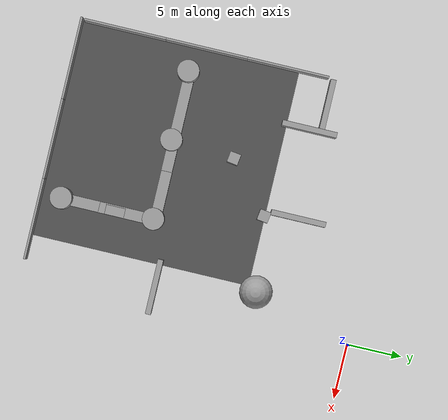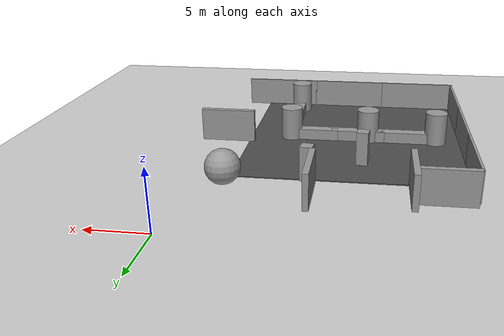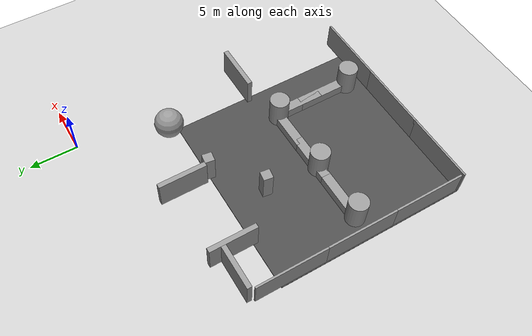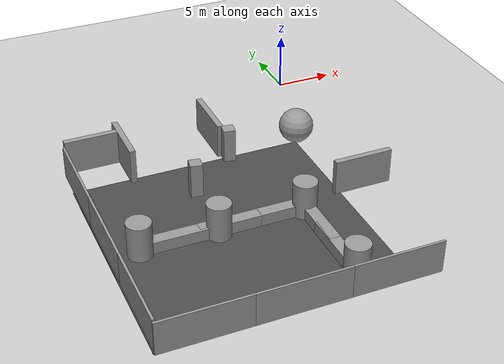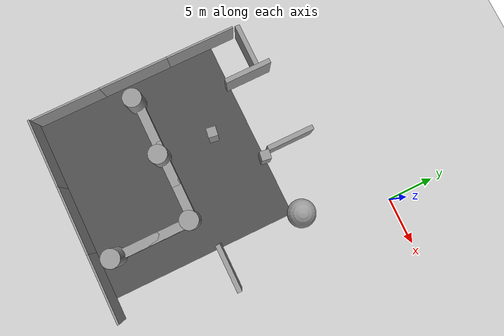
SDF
<sdf version="1.6">
 <world name="default">
  <model name="ground_plane">
   <static>1</static>
   <link name="link">
    <collision name="collision">
     <geometry><plane><normal>0 0 1</normal><size>100 100</size></plane></geometry>
     <surface>
      <contact><collide_bitmask>65535</collide_bitmask></contact>
      <friction><ode><mu>100</mu><mu2>50</mu2></ode></friction>
     </surface>
    </collision>
    <visual name="visual">
     <cast_shadows>0</cast_shadows>
     <geometry><plane><normal>0 0 1</normal><size>100 100</size></plane></geometry>
     <material>
      <script><uri>file://media/materials/scripts/gazebo.material</uri><name>Gazebo/Grey</name></script>
     </material>
    </visual>
   </link>
  </model>
  <model name="asphalt_plane_0_clone">
   <static>1</static>
   <link name="link">
    <collision name="collision"><geometry><box><size>20 20 0.1</size></box></geometry></collision>
    <visual name="visual">
     <cast_shadows>0</cast_shadows>
     <geometry><box><size>20 20 0.1</size></box></geometry>
     <material>
      <script>
       <uri>model://asphalt_plane/materials/scripts</uri>
       <uri>model://asphalt_plane/materials/textures</uri>
       <name>vrc/asphalt</name>
      </script>
     </material>
    </visual>
   </link>
   <pose>-13.0909 -19.8496 0 0 -0 0</pose>
  </model>
  <model name="grey_wall_clone_clone_3_clone_6_clone_3">
   <static>1</static>
   <link name="link">
    <pose>0 0 1.4 0 -0 0</pose>
    <collision name="collision"><geometry><box><size>7.5 0.2 2.8</size></box></geometry></collision>
    <visual name="visual">
     <cast_shadows>0</cast_shadows>
     <geometry><box><size>7.5 0.2 2.8</size></box></geometry>
     <material>
      <script>
       <uri>model://grey_wall/materials/scripts</uri>
       <uri>model://grey_wall/materials/textures</uri>
       <name>vrc/grey_wall</name>
      </script>
     </material>
    </visual>
    <enable_wind>1</enable_wind>
   </link>
   <pose>-22.9 -10.9196 0 0 -0 1.5707</pose>
   <enable_wind>1</enable_wind>
  </model>
  <model name="grey_wall_clone_clone_3_clone_6_clone_4">
   <static>1</static>
   <link name="link">
    <pose>0 0 1.4 0 -0 0</pose>
    <collision name="collision"><geometry><box><size>7.5 0.2 2.8</size></box></geometry></collision>
    <visual name="visual">
     <cast_shadows>0</cast_shadows>
     <geometry><box><size>7.5 0.2 2.8</size></box></geometry>
     <material>
      <script>
       <uri>model://grey_wall/materials/scripts</uri>
       <uri>model://grey_wall/materials/textures</uri>
       <name>vrc/grey_wall</name>
      </script>
     </material>
    </visual>
    <enable_wind>1</enable_wind>
   </link>
   <pose>-22.9 -18.392 0 0 -0 1.5707</pose>
   <enable_wind>1</enable_wind>
  </model>
  <model name="grey_wall_clone_clone_3_clone_6_clone_5">
   <static>1</static>
   <link name="link">
    <pose>0 0 1.4 0 -0 0</pose>
    <collision name="collision"><geometry><box><size>7.5 0.2 2.8</size></box></geometry></collision>
    <visual name="visual">
     <cast_shadows>0</cast_shadows>
     <geometry><box><size>7.5 0.2 2.8</size></box></geometry>
     <material>
      <script>
       <uri>model://grey_wall/materials/scripts</uri>
       <uri>model://grey_wall/materials/textures</uri>
       <name>vrc/grey_wall</name>
      </script>
     </material>
    </visual>
    <enable_wind>1</enable_wind>
   </link>
   <pose>-22.9 -25.8809 0 0 -0 1.5707</pose>
   <enable_wind>1</enable_wind>
  </model>
  <model name="grey_wall_clone_0">
   <static>1</static>
   <link name="link">
    <pose>0 0 1.4 0 -0 0</pose>
    <collision name="collision"><geometry><box><size>7.5 0.2 2.8</size></box></geometry></collision>
    <visual name="visual">
     <cast_shadows>0</cast_shadows>
     <geometry><box><size>7.5 0.2 2.8</size></box></geometry>
     <material>
      <script>
       <uri>model://grey_wall/materials/scripts</uri>
       <uri>model://grey_wall/materials/textures</uri>
       <name>vrc/grey_wall</name>
      </script>
     </material>
    </visual>
    <enable_wind>1</enable_wind>
   </link>
   <pose>-19.3 -29.9 0 0 -0 0</pose>
   <enable_wind>1</enable_wind>
  </model>
  <model name="grey_wall_clone_1">
   <static>1</static>
   <link name="link">
    <pose>0 0 1.4 0 -0 0</pose>
    <collision name="collision"><geometry><box><size>7.5 0.2 2.8</size></box></geometry></collision>
    <visual name="visual">
     <cast_shadows>0</cast_shadows>
     <geometry><box><size>7.5 0.2 2.8</size></box></geometry>
     <material>
      <script>
       <uri>model://grey_wall/materials/scripts</uri>
       <uri>model://grey_wall/materials/textures</uri>
       <name>vrc/grey_wall</name>
      </script>
     </material>
    </visual>
    <enable_wind>1</enable_wind>
   </link>
   <pose>-11.9819 -29.9 0 0 -0 0</pose>
   <enable_wind>1</enable_wind>
  </model>
  <model name="grey_wall_clone_2">
   <static>1</static>
   <link name="link">
    <pose>0 0 1.4 0 -0 0</pose>
    <collision name="collision"><geometry><box><size>7.5 0.2 2.8</size></box></geometry></collision>
    <visual name="visual">
     <cast_shadows>0</cast_shadows>
     <geometry><box><size>7.5 0.2 2.8</size></box></geometry>
     <material>
      <script>
       <uri>model://grey_wall/materials/scripts</uri>
       <uri>model://grey_wall/materials/textures</uri>
       <name>vrc/grey_wall</name>
      </script>
     </material>
    </visual>
    <enable_wind>1</enable_wind>
   </link>
   <pose>-4.58635 -29.9 0 0 -0 0</pose>
   <enable_wind>1</enable_wind>
  </model>
  <model name="unit_box_clone_clone_clone_clone">
   <link name="link">
    <inertial>
     <mass>1</mass>
     <inertia>
      <ixx>0.166667</ixx>
      <ixy>0</ixy>
      <ixz>0</ixz>
      <iyy>0.166667</iyy>
      <iyz>0</iyz>
      <izz>0.166667</izz>
     </inertia>
    </inertial>
    <visual name="visual">
     <geometry><box><size>0.5 5 3</size></box></geometry>
     <material>
      <script><name>Gazebo/Grey</name><uri>file://media/materials/scripts/gazebo.material</uri></script>
      <shader type="pixel"><normal_map>__default__</normal_map></shader>
      <ambient>0.3 0.3 0.3 1</ambient>
      <diffuse>0.7 0.7 0.7 1</diffuse>
      <specular>0.01 0.01 0.01 1</specular>
      <emissive>0 0 0 1</emissive>
     </material>
    </visual>
    <collision name="collision">
     <geometry><box><size>1 5 3</size></box></geometry>
     <surface>
      <friction>
       <ode><mu>1</mu><mu2>1</mu2><fdir1>0 0 0</fdir1><slip1>0</slip1><slip2>0</slip2></ode>
       <torsional>
        <coefficient>1</coefficient>
        <patch_radius>0</patch_radius>
        <surface_radius>0</surface_radius>
        <use_patch_radius>1</use_patch_radius>
        <ode><slip>0</slip></ode>
       </torsional>
      </friction>
      <bounce><restitution_coefficient>0</restitution_coefficient><threshold>1e+06</threshold></bounce>
      <contact>
       <collide_without_contact>0</collide_without_contact>
       <collide_without_contact_bitmask>1</collide_without_contact_bitmask>
       <collide_bitmask>1</collide_bitmask>
       <ode>
        <soft_cfm>0</soft_cfm>
        <soft_erp>0.2</soft_erp>
        <kp>1e+13</kp>
        <kd>1</kd>
        <max_vel>0.01</max_vel>
        <min_depth>0</min_depth>
       </ode>
       <bullet>
        <split_impulse>1</split_impulse>
        <split_impulse_penetration_threshold>-0.01</split_impulse_penetration_threshold>
        <soft_cfm>0</soft_cfm>
        <soft_erp>0.2</soft_erp>
        <kp>1e+13</kp>
        <kd>1</kd>
       </bullet>
      </contact>
     </surface>
    </collision>
   </link>
   <static>1</static>
   <pose>-10.0001 -6.93047 1.54724 0 -0 6.7e-05</pose>
  </model>
  <model name="unit_box_1_clone_0_clone_2_clone_7_clone">
   <link name="link">
    <inertial>
     <mass>1</mass>
     <inertia>
      <ixx>0.166667</ixx>
      <ixy>0</ixy>
      <ixz>0</ixz>
      <iyy>0.166667</iyy>
      <iyz>0</iyz>
      <izz>0.166667</izz>
     </inertia>
    </inertial>
    <visual name="visual">
     <geometry><box><size>1 1 3</size></box></geometry>
     <material>
      <script><name>Gazebo/Grey</name><uri>file://media/materials/scripts/gazebo.material</uri></script>
      <shader type="pixel"><normal_map>__default__</normal_map></shader>
      <ambient>0.3 0.3 0.3 1</ambient>
      <diffuse>0.7 0.7 0.7 1</diffuse>
      <specular>0.01 0.01 0.01 1</specular>
      <emissive>0 0 0 1</emissive>
     </material>
    </visual>
    <collision name="collision">
     <geometry><box><size>1 1 3</size></box></geometry>
     <surface>
      <friction>
       <ode><mu>1</mu><mu2>1</mu2><fdir1>0 0 0</fdir1><slip1>0</slip1><slip2>0</slip2></ode>
       <torsional>
        <coefficient>1</coefficient>
        <patch_radius>0</patch_radius>
        <surface_radius>0</surface_radius>
        <use_patch_radius>1</use_patch_radius>
        <ode><slip>0</slip></ode>
       </torsional>
      </friction>
      <bounce><restitution_coefficient>0</restitution_coefficient><threshold>1e+06</threshold></bounce>
      <contact>
       <collide_without_contact>0</collide_without_contact>
       <collide_without_contact_bitmask>1</collide_without_contact_bitmask>
       <collide_bitmask>1</collide_bitmask>
       <ode>
        <soft_cfm>0</soft_cfm>
        <soft_erp>0.2</soft_erp>
        <kp>1e+13</kp>
        <kd>1</kd>
        <max_vel>0.01</max_vel>
        <min_depth>0</min_depth>
       </ode>
       <bullet>
        <split_impulse>1</split_impulse>
        <split_impulse_penetration_threshold>-0.01</split_impulse_penetration_threshold>
        <soft_cfm>0</soft_cfm>
        <soft_erp>0.2</soft_erp>
        <kp>1e+13</kp>
        <kd>1</kd>
       </bullet>
      </contact>
     </surface>
    </collision>
   </link>
   <static>1</static>
   <pose>-9.49705 -9.97113 1.52567 0 0 -0.143769</pose>
  </model>
  <model name="unit_box_clone_clone_clone_clone_clone_0">
   <link name="link">
    <inertial>
     <mass>1</mass>
     <inertia>
      <ixx>0.166667</ixx>
      <ixy>0</ixy>
      <ixz>0</ixz>
      <iyy>0.166667</iyy>
      <iyz>0</iyz>
      <izz>0.166667</izz>
     </inertia>
    </inertial>
    <visual name="visual">
     <geometry><box><size>0.5 5 3</size></box></geometry>
     <material>
      <script><name>Gazebo/Grey</name><uri>file://media/materials/scripts/gazebo.material</uri></script>
      <shader type="pixel"><normal_map>__default__</normal_map></shader>
      <ambient>0.3 0.3 0.3 1</ambient>
      <diffuse>0.7 0.7 0.7 1</diffuse>
      <specular>0.01 0.01 0.01 1</specular>
      <emissive>0 0 0 1</emissive>
     </material>
    </visual>
    <collision name="collision">
     <geometry><box><size>1 5 3</size></box></geometry>
     <surface>
      <friction>
       <ode><mu>1</mu><mu2>1</mu2><fdir1>0 0 0</fdir1><slip1>0</slip1><slip2>0</slip2></ode>
       <torsional>
        <coefficient>1</coefficient>
        <patch_radius>0</patch_radius>
        <surface_radius>0</surface_radius>
        <use_patch_radius>1</use_patch_radius>
        <ode><slip>0</slip></ode>
       </torsional>
      </friction>
      <bounce><restitution_coefficient>0</restitution_coefficient><threshold>1e+06</threshold></bounce>
      <contact>
       <collide_without_contact>0</collide_without_contact>
       <collide_without_contact_bitmask>1</collide_without_contact_bitmask>
       <collide_bitmask>1</collide_bitmask>
       <ode>
        <soft_cfm>0</soft_cfm>
        <soft_erp>0.2</soft_erp>
        <kp>1e+13</kp>
        <kd>1</kd>
        <max_vel>0.01</max_vel>
        <min_depth>0</min_depth>
       </ode>
       <bullet>
        <split_impulse>1</split_impulse>
        <split_impulse_penetration_threshold>-0.01</split_impulse_penetration_threshold>
        <soft_cfm>0</soft_cfm>
        <soft_erp>0.2</soft_erp>
        <kp>1e+13</kp>
        <kd>1</kd>
       </bullet>
      </contact>
     </surface>
    </collision>
   </link>
   <static>1</static>
   <pose>-18.0055 -7.80506 1.54724 0 -0 6.7e-05</pose>
  </model>
  <model name="unit_box_x_horiz_clone_0_clone_clone_clone">
   <link name="link">
    <inertial>
     <mass>1</mass>
     <inertia>
      <ixx>0.166667</ixx>
      <ixy>0</ixy>
      <ixz>0</ixz>
      <iyy>0.166667</iyy>
      <iyz>0</iyz>
      <izz>0.166667</izz>
     </inertia>
    </inertial>
    <visual name="visual">
     <geometry><box><size>5 0.5 3</size></box></geometry>
     <material>
      <script><name>Gazebo/Grey</name><uri>file://media/materials/scripts/gazebo.material</uri></script>
      <shader type="pixel"><normal_map>__default__</normal_map></shader>
      <ambient>0.3 0.3 0.3 1</ambient>
      <diffuse>0.7 0.7 0.7 1</diffuse>
      <specular>0.01 0.01 0.01 1</specular>
      <emissive>0 0 0 1</emissive>
     </material>
    </visual>
    <collision name="collision">
     <geometry><box><size>5 1 3</size></box></geometry>
     <surface>
      <friction>
       <ode><mu>1</mu><mu2>1</mu2><fdir1>0 0 0</fdir1><slip1>0</slip1><slip2>0</slip2></ode>
       <torsional>
        <coefficient>1</coefficient>
        <patch_radius>0</patch_radius>
        <surface_radius>0</surface_radius>
        <use_patch_radius>1</use_patch_radius>
        <ode><slip>0</slip></ode>
       </torsional>
      </friction>
      <bounce><restitution_coefficient>0</restitution_coefficient><threshold>1e+06</threshold></bounce>
      <contact>
       <collide_without_contact>0</collide_without_contact>
       <collide_without_contact_bitmask>1</collide_without_contact_bitmask>
       <collide_bitmask>1</collide_bitmask>
       <ode>
        <soft_cfm>0</soft_cfm>
        <soft_erp>0.2</soft_erp>
        <kp>1e+13</kp>
        <kd>1</kd>
        <max_vel>0.01</max_vel>
        <min_depth>0</min_depth>
       </ode>
       <bullet>
        <split_impulse>1</split_impulse>
        <split_impulse_penetration_threshold>-0.01</split_impulse_penetration_threshold>
        <soft_cfm>0</soft_cfm>
        <soft_erp>0.2</soft_erp>
        <kp>1e+13</kp>
        <kd>1</kd>
       </bullet>
      </contact>
     </surface>
    </collision>
   </link>
   <static>1</static>
   <pose>-20.271 -6.72334 1.54702 0 -0 6.7e-05</pose>
  </model>
  <model name="unit_box_1_clone_0_clone_2_clone_7_clone_clone_0_clone">
   <link name="link">
    <inertial>
     <mass>1</mass>
     <inertia>
      <ixx>0.166667</ixx>
      <ixy>0</ixy>
      <ixz>0</ixz>
      <iyy>0.166667</iyy>
      <iyz>0</iyz>
      <izz>0.166667</izz>
     </inertia>
    </inertial>
    <visual name="visual">
     <geometry><box><size>1 1 3</size></box></geometry>
     <material>
      <script><name>Gazebo/Grey</name><uri>file://media/materials/scripts/gazebo.material</uri></script>
      <shader type="pixel"><normal_map>__default__</normal_map></shader>
      <ambient>0.3 0.3 0.3 1</ambient>
      <diffuse>0.7 0.7 0.7 1</diffuse>
      <specular>0.01 0.01 0.01 1</specular>
      <emissive>0 0 0 1</emissive>
     </material>
    </visual>
    <collision name="collision">
     <geometry><box><size>1 1 3</size></box></geometry>
     <surface>
      <friction>
       <ode><mu>1</mu><mu2>1</mu2><fdir1>0 0 0</fdir1><slip1>0</slip1><slip2>0</slip2></ode>
       <torsional>
        <coefficient>1</coefficient>
        <patch_radius>0</patch_radius>
        <surface_radius>0</surface_radius>
        <use_patch_radius>1</use_patch_radius>
        <ode><slip>0</slip></ode>
       </torsional>
      </friction>
      <bounce><restitution_coefficient>0</restitution_coefficient><threshold>1e+06</threshold></bounce>
      <contact>
       <collide_without_contact>0</collide_without_contact>
       <collide_without_contact_bitmask>1</collide_without_contact_bitmask>
       <collide_bitmask>1</collide_bitmask>
       <ode>
        <soft_cfm>0</soft_cfm>
        <soft_erp>0.2</soft_erp>
        <kp>1e+13</kp>
        <kd>1</kd>
        <max_vel>0.01</max_vel>
        <min_depth>0</min_depth>
       </ode>
       <bullet>
        <split_impulse>1</split_impulse>
        <split_impulse_penetration_threshold>-0.01</split_impulse_penetration_threshold>
        <soft_cfm>0</soft_cfm>
        <soft_erp>0.2</soft_erp>
        <kp>1e+13</kp>
        <kd>1</kd>
       </bullet>
      </contact>
     </surface>
    </collision>
   </link>
   <static>1</static>
   <pose>-13.9024 -13.7658 1.52567 0 0 -0.143769</pose>
  </model>
  <model name="unit_box_5m_clone">
   <link name="link">
    <inertial>
     <mass>1</mass>
     <inertia>
      <ixx>0.166667</ixx>
      <ixy>0</ixy>
      <ixz>0</ixz>
      <iyy>0.166667</iyy>
      <iyz>0</iyz>
      <izz>0.166667</izz>
     </inertia>
    </inertial>
    <visual name="visual">
     <geometry><box><size>1 5 1</size></box></geometry>
     <material>
      <script><name>Gazebo/Grey</name><uri>file://media/materials/scripts/gazebo.material</uri></script>
      <shader type="pixel"><normal_map>__default__</normal_map></shader>
      <ambient>0.3 0.3 0.3 1</ambient>
      <diffuse>0.7 0.7 0.7 1</diffuse>
      <specular>0.01 0.01 0.01 1</specular>
      <emissive>0 0 0 1</emissive>
     </material>
    </visual>
    <collision name="collision">
     <geometry><box><size>1 5 1</size></box></geometry>
     <surface>
      <friction>
       <ode><mu>1</mu><mu2>1</mu2><fdir1>0 0 0</fdir1><slip1>0</slip1><slip2>0</slip2></ode>
       <torsional>
        <coefficient>1</coefficient>
        <patch_radius>0</patch_radius>
        <surface_radius>0</surface_radius>
        <use_patch_radius>1</use_patch_radius>
        <ode><slip>0</slip></ode>
       </torsional>
      </friction>
      <bounce><restitution_coefficient>0</restitution_coefficient><threshold>1e+06</threshold></bounce>
      <contact>
       <collide_without_contact>0</collide_without_contact>
       <collide_without_contact_bitmask>1</collide_without_contact_bitmask>
       <collide_bitmask>1</collide_bitmask>
       <ode>
        <soft_cfm>0</soft_cfm>
        <soft_erp>0.2</soft_erp>
        <kp>1e+13</kp>
        <kd>1</kd>
        <max_vel>0.01</max_vel>
        <min_depth>0</min_depth>
       </ode>
       <bullet>
        <split_impulse>1</split_impulse>
        <split_impulse_penetration_threshold>-0.01</split_impulse_penetration_threshold>
        <soft_cfm>0</soft_cfm>
        <soft_erp>0.2</soft_erp>
        <kp>1e+13</kp>
        <kd>1</kd>
       </bullet>
      </contact>
     </surface>
    </collision>
   </link>
   <static>1</static>
   <pose>-6.89751 -24.6902 0.55 0 -0 3.8e-05</pose>
  </model>
  <model name="unit_box_5m_x_clone_0">
   <link name="link">
    <inertial>
     <mass>1</mass>
     <inertia>
      <ixx>0.166667</ixx>
      <ixy>0</ixy>
      <ixz>0</ixz>
      <iyy>0.166667</iyy>
      <iyz>0</iyz>
      <izz>0.166667</izz>
     </inertia>
    </inertial>
    <visual name="visual">
     <geometry><box><size>5 1 1</size></box></geometry>
     <material>
      <script><name>Gazebo/Grey</name><uri>file://media/materials/scripts/gazebo.material</uri></script>
      <shader type="pixel"><normal_map>__default__</normal_map></shader>
      <ambient>0.3 0.3 0.3 1</ambient>
      <diffuse>0.7 0.7 0.7 1</diffuse>
      <specular>0.01 0.01 0.01 1</specular>
      <emissive>0 0 0 1</emissive>
     </material>
    </visual>
    <collision name="collision">
     <geometry><box><size>5 1 1</size></box></geometry>
     <surface>
      <friction>
       <ode><mu>1</mu><mu2>1</mu2><fdir1>0 0 0</fdir1><slip1>0</slip1><slip2>0</slip2></ode>
       <torsional>
        <coefficient>1</coefficient>
        <patch_radius>0</patch_radius>
        <surface_radius>0</surface_radius>
        <use_patch_radius>1</use_patch_radius>
        <ode><slip>0</slip></ode>
       </torsional>
      </friction>
      <bounce><restitution_coefficient>0</restitution_coefficient><threshold>1e+06</threshold></bounce>
      <contact>
       <collide_without_contact>0</collide_without_contact>
       <collide_without_contact_bitmask>1</collide_without_contact_bitmask>
       <collide_bitmask>1</collide_bitmask>
       <ode>
        <soft_cfm>0</soft_cfm>
        <soft_erp>0.2</soft_erp>
        <kp>1e+13</kp>
        <kd>1</kd>
        <max_vel>0.01</max_vel>
        <min_depth>0</min_depth>
       </ode>
       <bullet>
        <split_impulse>1</split_impulse>
        <split_impulse_penetration_threshold>-0.01</split_impulse_penetration_threshold>
        <soft_cfm>0</soft_cfm>
        <soft_erp>0.2</soft_erp>
        <kp>1e+13</kp>
        <kd>1</kd>
       </bullet>
      </contact>
     </surface>
    </collision>
   </link>
   <static>1</static>
   <pose>-8.89645 -19.3794 0.55 0 -0 3.8e-05</pose>
  </model>
  <model name="unit_box_5m_clone_clone">
   <link name="link">
    <inertial>
     <mass>1</mass>
     <inertia>
      <ixx>0.166667</ixx>
      <ixy>0</ixy>
      <ixz>0</ixz>
      <iyy>0.166667</iyy>
      <iyz>0</iyz>
      <izz>0.166667</izz>
     </inertia>
    </inertial>
    <visual name="visual">
     <geometry><box><size>1 5 1</size></box></geometry>
     <material>
      <script><name>Gazebo/Grey</name><uri>file://media/materials/scripts/gazebo.material</uri></script>
      <shader type="pixel"><normal_map>__default__</normal_map></shader>
      <ambient>0.3 0.3 0.3 1</ambient>
      <diffuse>0.7 0.7 0.7 1</diffuse>
      <specular>0.01 0.01 0.01 1</specular>
      <emissive>0 0 0 1</emissive>
     </material>
    </visual>
    <collision name="collision">
     <geometry><box><size>1 5 1</size></box></geometry>
     <surface>
      <friction>
       <ode><mu>1</mu><mu2>1</mu2><fdir1>0 0 0</fdir1><slip1>0</slip1><slip2>0</slip2></ode>
       <torsional>
        <coefficient>1</coefficient>
        <patch_radius>0</patch_radius>
        <surface_radius>0</surface_radius>
        <use_patch_radius>1</use_patch_radius>
        <ode><slip>0</slip></ode>
       </torsional>
      </friction>
      <bounce><restitution_coefficient>0</restitution_coefficient><threshold>1e+06</threshold></bounce>
      <contact>
       <collide_without_contact>0</collide_without_contact>
       <collide_without_contact_bitmask>1</collide_without_contact_bitmask>
       <collide_bitmask>1</collide_bitmask>
       <ode>
        <soft_cfm>0</soft_cfm>
        <soft_erp>0.2</soft_erp>
        <kp>1e+13</kp>
        <kd>1</kd>
        <max_vel>0.01</max_vel>
        <min_depth>0</min_depth>
       </ode>
       <bullet>
        <split_impulse>1</split_impulse>
        <split_impulse_penetration_threshold>-0.01</split_impulse_penetration_threshold>
        <soft_cfm>0</soft_cfm>
        <soft_erp>0.2</soft_erp>
        <kp>1e+13</kp>
        <kd>1</kd>
       </bullet>
      </contact>
     </surface>
    </collision>
   </link>
   <static>1</static>
   <pose>-6.88897 -22.0497 0.55 0 -0 3.8e-05</pose>
  </model>
  <model name="unit_box_5m_x_clone_0_clone">
   <link name="link">
    <inertial>
     <mass>1</mass>
     <inertia>
      <ixx>0.166667</ixx>
      <ixy>0</ixy>
      <ixz>0</ixz>
      <iyy>0.166667</iyy>
      <iyz>0</iyz>
      <izz>0.166667</izz>
     </inertia>
    </inertial>
    <visual name="visual">
     <geometry><box><size>5 1 1</size></box></geometry>
     <material>
      <script><name>Gazebo/Grey</name><uri>file://media/materials/scripts/gazebo.material</uri></script>
      <shader type="pixel"><normal_map>__default__</normal_map></shader>
      <ambient>0.3 0.3 0.3 1</ambient>
      <diffuse>0.7 0.7 0.7 1</diffuse>
      <specular>0.01 0.01 0.01 1</specular>
      <emissive>0 0 0 1</emissive>
     </material>
    </visual>
    <collision name="collision">
     <geometry><box><size>5 1 1</size></box></geometry>
     <surface>
      <friction>
       <ode><mu>1</mu><mu2>1</mu2><fdir1>0 0 0</fdir1><slip1>0</slip1><slip2>0</slip2></ode>
       <torsional>
        <coefficient>1</coefficient>
        <patch_radius>0</patch_radius>
        <surface_radius>0</surface_radius>
        <use_patch_radius>1</use_patch_radius>
        <ode><slip>0</slip></ode>
       </torsional>
      </friction>
      <bounce><restitution_coefficient>0</restitution_coefficient><threshold>1e+06</threshold></bounce>
      <contact>
       <collide_without_contact>0</collide_without_contact>
       <collide_without_contact_bitmask>1</collide_without_contact_bitmask>
       <collide_bitmask>1</collide_bitmask>
       <ode>
        <soft_cfm>0</soft_cfm>
        <soft_erp>0.2</soft_erp>
        <kp>1e+13</kp>
        <kd>1</kd>
        <max_vel>0.01</max_vel>
        <min_depth>0</min_depth>
       </ode>
       <bullet>
        <split_impulse>1</split_impulse>
        <split_impulse_penetration_threshold>-0.01</split_impulse_penetration_threshold>
        <soft_cfm>0</soft_cfm>
        <soft_erp>0.2</soft_erp>
        <kp>1e+13</kp>
        <kd>1</kd>
       </bullet>
      </contact>
     </surface>
    </collision>
   </link>
   <static>1</static>
   <pose>-13.2945 -19.39 0.55 0 -0 3.8e-05</pose>
  </model>
  <model name="unit_box_5m_x_clone_0_clone_0">
   <link name="link">
    <inertial>
     <mass>1</mass>
     <inertia>
      <ixx>0.166667</ixx>
      <ixy>0</ixy>
      <ixz>0</ixz>
      <iyy>0.166667</iyy>
      <iyz>0</iyz>
      <izz>0.166667</izz>
     </inertia>
    </inertial>
    <visual name="visual">
     <geometry><box><size>5 1 1</size></box></geometry>
     <material>
      <script><name>Gazebo/Grey</name><uri>file://media/materials/scripts/gazebo.material</uri></script>
      <shader type="pixel"><normal_map>__default__</normal_map></shader>
      <ambient>0.3 0.3 0.3 1</ambient>
      <diffuse>0.7 0.7 0.7 1</diffuse>
      <specular>0.01 0.01 0.01 1</specular>
      <emissive>0 0 0 1</emissive>
     </material>
    </visual>
    <collision name="collision">
     <geometry><box><size>5 1 1</size></box></geometry>
     <surface>
      <friction>
       <ode><mu>1</mu><mu2>1</mu2><fdir1>0 0 0</fdir1><slip1>0</slip1><slip2>0</slip2></ode>
       <torsional>
        <coefficient>1</coefficient>
        <patch_radius>0</patch_radius>
        <surface_radius>0</surface_radius>
        <use_patch_radius>1</use_patch_radius>
        <ode><slip>0</slip></ode>
       </torsional>
      </friction>
      <bounce><restitution_coefficient>0</restitution_coefficient><threshold>1e+06</threshold></bounce>
      <contact>
       <collide_without_contact>0</collide_without_contact>
       <collide_without_contact_bitmask>1</collide_without_contact_bitmask>
       <collide_bitmask>1</collide_bitmask>
       <ode>
        <soft_cfm>0</soft_cfm>
        <soft_erp>0.2</soft_erp>
        <kp>1e+13</kp>
        <kd>1</kd>
        <max_vel>0.01</max_vel>
        <min_depth>0</min_depth>
       </ode>
       <bullet>
        <split_impulse>1</split_impulse>
        <split_impulse_penetration_threshold>-0.01</split_impulse_penetration_threshold>
        <soft_cfm>0</soft_cfm>
        <soft_erp>0.2</soft_erp>
        <kp>1e+13</kp>
        <kd>1</kd>
       </bullet>
      </contact>
     </surface>
    </collision>
   </link>
   <static>1</static>
   <pose>-17.4798 -19.3939 0.55 0 -0 3.8e-05</pose>
  </model>
  <model name="unit_cylinder_01_clone_3_clone_0_clone_0_clone">
   <link name="link">
    <inertial>
     <mass>1</mass>
     <inertia><ixx>0.145833</ixx><ixy>0</ixy><ixz>0</ixz><iyy>0.145833</iyy><iyz>0</iyz><izz>0.125</izz></inertia>
    </inertial>
    <visual name="visual">
     <geometry><cylinder><radius>1</radius><length>3</length></cylinder></geometry>
     <material>
      <script><name>Gazebo/Grey</name><uri>file://media/materials/scripts/gazebo.material</uri></script>
      <shader type="pixel"><normal_map>__default__</normal_map></shader>
      <ambient>0.3 0.3 0.3 1</ambient>
      <diffuse>0.7 0.7 0.7 1</diffuse>
      <specular>0.01 0.01 0.01 1</specular>
      <emissive>0 0 0 1</emissive>
     </material>
    </visual>
    <collision name="collision">
     <geometry><cylinder><radius>1</radius><length>3</length></cylinder></geometry>
     <surface>
      <friction>
       <ode><mu>1</mu><mu2>1</mu2><fdir1>0 0 0</fdir1><slip1>0</slip1><slip2>0</slip2></ode>
       <torsional>
        <coefficient>1</coefficient>
        <patch_radius>0</patch_radius>
        <surface_radius>0</surface_radius>
        <use_patch_radius>1</use_patch_radius>
        <ode><slip>0</slip></ode>
       </torsional>
      </friction>
      <bounce><restitution_coefficient>0</restitution_coefficient><threshold>1e+06</threshold></bounce>
      <contact>
       <collide_without_contact>0</collide_without_contact>
       <collide_without_contact_bitmask>1</collide_without_contact_bitmask>
       <collide_bitmask>1</collide_bitmask>
       <ode>
        <soft_cfm>0</soft_cfm>
        <soft_erp>0.2</soft_erp>
        <kp>1e+13</kp>
        <kd>1</kd>
        <max_vel>0.01</max_vel>
        <min_depth>0</min_depth>
       </ode>
       <bullet>
        <split_impulse>1</split_impulse>
        <split_impulse_penetration_threshold>-0.01</split_impulse_penetration_threshold>
        <soft_cfm>0</soft_cfm>
        <soft_erp>0.2</soft_erp>
        <kp>1e+13</kp>
        <kd>1</kd>
       </bullet>
      </contact>
     </surface>
    </collision>
   </link>
   <static>1</static>
   <pose>-6.90494 -27.9835 1.52285 1e-06 2e-06 4e-06</pose>
  </model>
  <model name="unit_cylinder_01_clone_3_clone_0_clone_0_clone_0">
   <link name="link">
    <inertial>
     <mass>1</mass>
     <inertia><ixx>0.145833</ixx><ixy>0</ixy><ixz>0</ixz><iyy>0.145833</iyy><iyz>0</iyz><izz>0.125</izz></inertia>
    </inertial>
    <visual name="visual">
     <geometry><cylinder><radius>1</radius><length>3</length></cylinder></geometry>
     <material>
      <script><name>Gazebo/Grey</name><uri>file://media/materials/scripts/gazebo.material</uri></script>
      <shader type="pixel"><normal_map>__default__</normal_map></shader>
      <ambient>0.3 0.3 0.3 1</ambient>
      <diffuse>0.7 0.7 0.7 1</diffuse>
      <specular>0.01 0.01 0.01 1</specular>
      <emissive>0 0 0 1</emissive>
     </material>
    </visual>
    <collision name="collision">
     <geometry><cylinder><radius>1</radius><length>3</length></cylinder></geometry>
     <surface>
      <friction>
       <ode><mu>1</mu><mu2>1</mu2><fdir1>0 0 0</fdir1><slip1>0</slip1><slip2>0</slip2></ode>
       <torsional>
        <coefficient>1</coefficient>
        <patch_radius>0</patch_radius>
        <surface_radius>0</surface_radius>
        <use_patch_radius>1</use_patch_radius>
        <ode><slip>0</slip></ode>
       </torsional>
      </friction>
      <bounce><restitution_coefficient>0</restitution_coefficient><threshold>1e+06</threshold></bounce>
      <contact>
       <collide_without_contact>0</collide_without_contact>
       <collide_without_contact_bitmask>1</collide_without_contact_bitmask>
       <collide_bitmask>1</collide_bitmask>
       <ode>
        <soft_cfm>0</soft_cfm>
        <soft_erp>0.2</soft_erp>
        <kp>1e+13</kp>
        <kd>1</kd>
        <max_vel>0.01</max_vel>
        <min_depth>0</min_depth>
       </ode>
       <bullet>
        <split_impulse>1</split_impulse>
        <split_impulse_penetration_threshold>-0.01</split_impulse_penetration_threshold>
        <soft_cfm>0</soft_cfm>
        <soft_erp>0.2</soft_erp>
        <kp>1e+13</kp>
        <kd>1</kd>
       </bullet>
      </contact>
     </surface>
    </collision>
   </link>
   <static>1</static>
   <pose>-20.5518 -19.5316 1.52285 1e-06 2e-06 4e-06</pose>
  </model>
  <model name="unit_cylinder_01_clone_3_clone_0_clone_0_clone_1">
   <link name="link">
    <inertial>
     <mass>1</mass>
     <inertia><ixx>0.145833</ixx><ixy>0</ixy><ixz>0</ixz><iyy>0.145833</iyy><iyz>0</iyz><izz>0.125</izz></inertia>
    </inertial>
    <visual name="visual">
     <geometry><cylinder><radius>1</radius><length>3</length></cylinder></geometry>
     <material>
      <script><name>Gazebo/Grey</name><uri>file://media/materials/scripts/gazebo.material</uri></script>
      <shader type="pixel"><normal_map>__default__</normal_map></shader>
      <ambient>0.3 0.3 0.3 1</ambient>
      <diffuse>0.7 0.7 0.7 1</diffuse>
      <specular>0.01 0.01 0.01 1</specular>
      <emissive>0 0 0 1</emissive>
     </material>
    </visual>
    <collision name="collision">
     <geometry><cylinder><radius>1</radius><length>3</length></cylinder></geometry>
     <surface>
      <friction>
       <ode><mu>1</mu><mu2>1</mu2><fdir1>0 0 0</fdir1><slip1>0</slip1><slip2>0</slip2></ode>
       <torsional>
        <coefficient>1</coefficient>
        <patch_radius>0</patch_radius>
        <surface_radius>0</surface_radius>
        <use_patch_radius>1</use_patch_radius>
        <ode><slip>0</slip></ode>
       </torsional>
      </friction>
      <bounce><restitution_coefficient>0</restitution_coefficient><threshold>1e+06</threshold></bounce>
      <contact>
       <collide_without_contact>0</collide_without_contact>
       <collide_without_contact_bitmask>1</collide_without_contact_bitmask>
       <collide_bitmask>1</collide_bitmask>
       <ode>
        <soft_cfm>0</soft_cfm>
        <soft_erp>0.2</soft_erp>
        <kp>1e+13</kp>
        <kd>1</kd>
        <max_vel>0.01</max_vel>
        <min_depth>0</min_depth>
       </ode>
       <bullet>
        <split_impulse>1</split_impulse>
        <split_impulse_penetration_threshold>-0.01</split_impulse_penetration_threshold>
        <soft_cfm>0</soft_cfm>
        <soft_erp>0.2</soft_erp>
        <kp>1e+13</kp>
        <kd>1</kd>
       </bullet>
      </contact>
     </surface>
    </collision>
   </link>
   <static>1</static>
   <pose>-6.96703 -19.5439 1.52285 1e-06 2e-06 4e-06</pose>
  </model>
  <model name="unit_cylinder_01_clone_3_clone_0_clone_0_clone_2">
   <link name="link">
    <inertial>
     <mass>1</mass>
     <inertia><ixx>0.145833</ixx><ixy>0</ixy><ixz>0</ixz><iyy>0.145833</iyy><iyz>0</iyz><izz>0.125</izz></inertia>
    </inertial>
    <visual name="visual">
     <geometry><cylinder><radius>1</radius><length>3</length></cylinder></geometry>
     <material>
      <script><name>Gazebo/Grey</name><uri>file://media/materials/scripts/gazebo.material</uri></script>
      <shader type="pixel"><normal_map>__default__</normal_map></shader>
      <ambient>0.3 0.3 0.3 1</ambient>
      <diffuse>0.7 0.7 0.7 1</diffuse>
      <specular>0.01 0.01 0.01 1</specular>
      <emissive>0 0 0 1</emissive>
     </material>
    </visual>
    <collision name="collision">
     <geometry><cylinder><radius>1</radius><length>3</length></cylinder></geometry>
     <surface>
      <friction>
       <ode><mu>1</mu><mu2>1</mu2><fdir1>0 0 0</fdir1><slip1>0</slip1><slip2>0</slip2></ode>
       <torsional>
        <coefficient>1</coefficient>
        <patch_radius>0</patch_radius>
        <surface_radius>0</surface_radius>
        <use_patch_radius>1</use_patch_radius>
        <ode><slip>0</slip></ode>
       </torsional>
      </friction>
      <bounce><restitution_coefficient>0</restitution_coefficient><threshold>1e+06</threshold></bounce>
      <contact>
       <collide_without_contact>0</collide_without_contact>
       <collide_without_contact_bitmask>1</collide_without_contact_bitmask>
       <collide_bitmask>1</collide_bitmask>
       <ode>
        <soft_cfm>0</soft_cfm>
        <soft_erp>0.2</soft_erp>
        <kp>1e+13</kp>
        <kd>1</kd>
        <max_vel>0.01</max_vel>
        <min_depth>0</min_depth>
       </ode>
       <bullet>
        <split_impulse>1</split_impulse>
        <split_impulse_penetration_threshold>-0.01</split_impulse_penetration_threshold>
        <soft_cfm>0</soft_cfm>
        <soft_erp>0.2</soft_erp>
        <kp>1e+13</kp>
        <kd>1</kd>
       </bullet>
      </contact>
     </surface>
    </collision>
   </link>
   <static>1</static>
   <pose>-14.2263 -19.5903 1.52285 1e-06 2e-06 4e-06</pose>
  </model>
  <model name="unit_box_x_horiz_clone_0_clone_clone_2_clone">
   <link name="link">
    <inertial>
     <mass>1</mass>
     <inertia>
      <ixx>0.166667</ixx>
      <ixy>0</ixy>
      <ixz>0</ixz>
      <iyy>0.166667</iyy>
      <iyz>0</iyz>
      <izz>0.166667</izz>
     </inertia>
    </inertial>
    <visual name="visual">
     <geometry><box><size>5 0.5 3</size></box></geometry>
     <material>
      <script><name>Gazebo/Grey</name><uri>file://media/materials/scripts/gazebo.material</uri></script>
      <shader type="pixel"><normal_map>__default__</normal_map></shader>
      <ambient>0.3 0.3 0.3 1</ambient>
      <diffuse>0.7 0.7 0.7 1</diffuse>
      <specular>0.01 0.01 0.01 1</specular>
      <emissive>0 0 0 1</emissive>
     </material>
    </visual>
    <collision name="collision">
     <geometry><box><size>5 1 3</size></box></geometry>
     <surface>
      <friction>
       <ode><mu>1</mu><mu2>1</mu2><fdir1>0 0 0</fdir1><slip1>0</slip1><slip2>0</slip2></ode>
       <torsional>
        <coefficient>1</coefficient>
        <patch_radius>0</patch_radius>
        <surface_radius>0</surface_radius>
        <use_patch_radius>1</use_patch_radius>
        <ode><slip>0</slip></ode>
       </torsional>
      </friction>
      <bounce><restitution_coefficient>0</restitution_coefficient><threshold>1e+06</threshold></bounce>
      <contact>
       <collide_without_contact>0</collide_without_contact>
       <collide_without_contact_bitmask>1</collide_without_contact_bitmask>
       <collide_bitmask>1</collide_bitmask>
       <ode>
        <soft_cfm>0</soft_cfm>
        <soft_erp>0.2</soft_erp>
        <kp>1e+13</kp>
        <kd>1</kd>
        <max_vel>0.01</max_vel>
        <min_depth>0</min_depth>
       </ode>
       <bullet>
        <split_impulse>1</split_impulse>
        <split_impulse_penetration_threshold>-0.01</split_impulse_penetration_threshold>
        <soft_cfm>0</soft_cfm>
        <soft_erp>0.2</soft_erp>
        <kp>1e+13</kp>
        <kd>1</kd>
       </bullet>
      </contact>
     </surface>
    </collision>
   </link>
   <static>1</static>
   <pose>-1.09088 -18.0403 1.54702 0 -0 6.7e-05</pose>
  </model>
  <model name="unit_sphere_clone_clone_clone_0">
   <link name="link">
    <inertial>
     <mass>1</mass>
     <inertia><ixx>0.1</ixx><ixy>0</ixy><ixz>0</ixz><iyy>0.1</iyy><iyz>0</iyz><izz>0.1</izz></inertia>
    </inertial>
    <visual name="visual">
     <geometry><sphere><radius>1.5</radius></sphere></geometry>
     <material>
      <script><name>Gazebo/Grey</name><uri>file://media/materials/scripts/gazebo.material</uri></script>
      <shader type="pixel"><normal_map>__default__</normal_map></shader>
      <ambient>0.3 0.3 0.3 1</ambient>
      <diffuse>0.7 0.7 0.7 1</diffuse>
      <specular>0.01 0.01 0.01 1</specular>
      <emissive>0 0 0 1</emissive>
     </material>
    </visual>
    <collision name="collision">
     <geometry><sphere><radius>1.5</radius></sphere></geometry>
     <surface>
      <friction>
       <ode><mu>1</mu><mu2>1</mu2><fdir1>0 0 0</fdir1><slip1>0</slip1><slip2>0</slip2></ode>
       <torsional>
        <coefficient>1</coefficient>
        <patch_radius>0</patch_radius>
        <surface_radius>0</surface_radius>
        <use_patch_radius>1</use_patch_radius>
        <ode><slip>0</slip></ode>
       </torsional>
      </friction>
      <bounce><restitution_coefficient>0</restitution_coefficient><threshold>1e+06</threshold></bounce>
      <contact>
       <collide_without_contact>0</collide_without_contact>
       <collide_without_contact_bitmask>1</collide_without_contact_bitmask>
       <collide_bitmask>1</collide_bitmask>
       <ode>
        <soft_cfm>0</soft_cfm>
        <soft_erp>0.2</soft_erp>
        <kp>1e+13</kp>
        <kd>1</kd>
        <max_vel>0.01</max_vel>
        <min_depth>0</min_depth>
       </ode>
       <bullet>
        <split_impulse>1</split_impulse>
        <split_impulse_penetration_threshold>-0.01</split_impulse_penetration_threshold>
        <soft_cfm>0</soft_cfm>
        <soft_erp>0.2</soft_erp>
        <kp>1e+13</kp>
        <kd>1</kd>
       </bullet>
      </contact>
     </surface>
    </collision>
   </link>
   <static>1</static>
   <pose>-2.70835 -9.08111 1.20532 0.023046 0.019979 -0.003707</pose>
  </model>
 </world>
</sdf>
